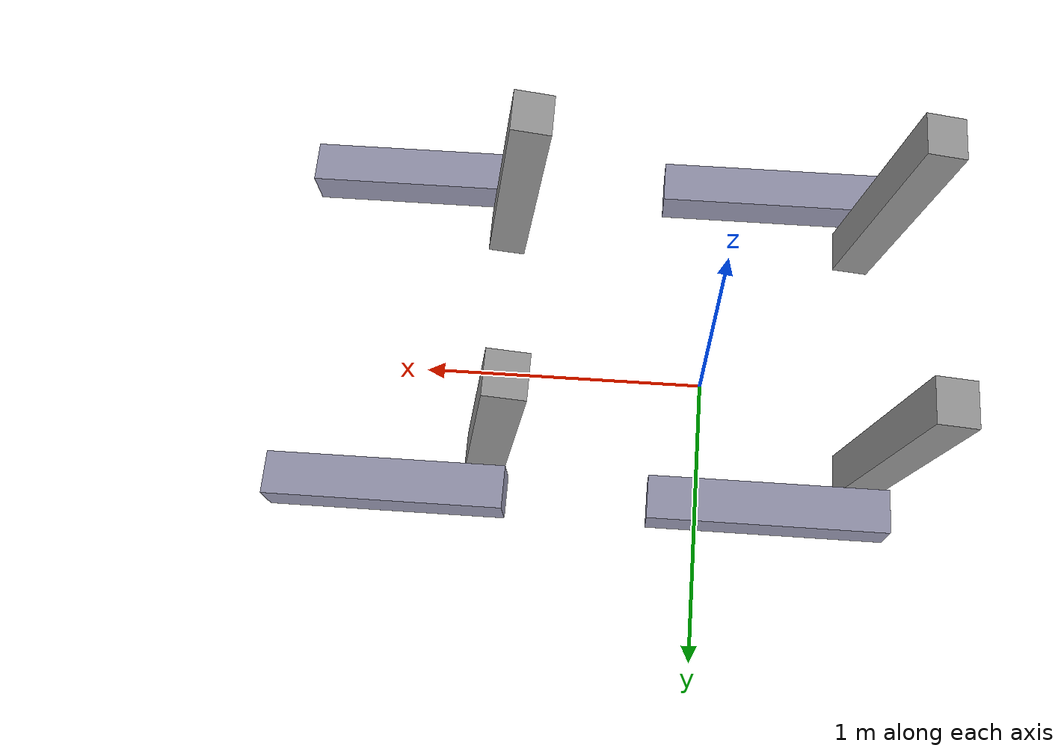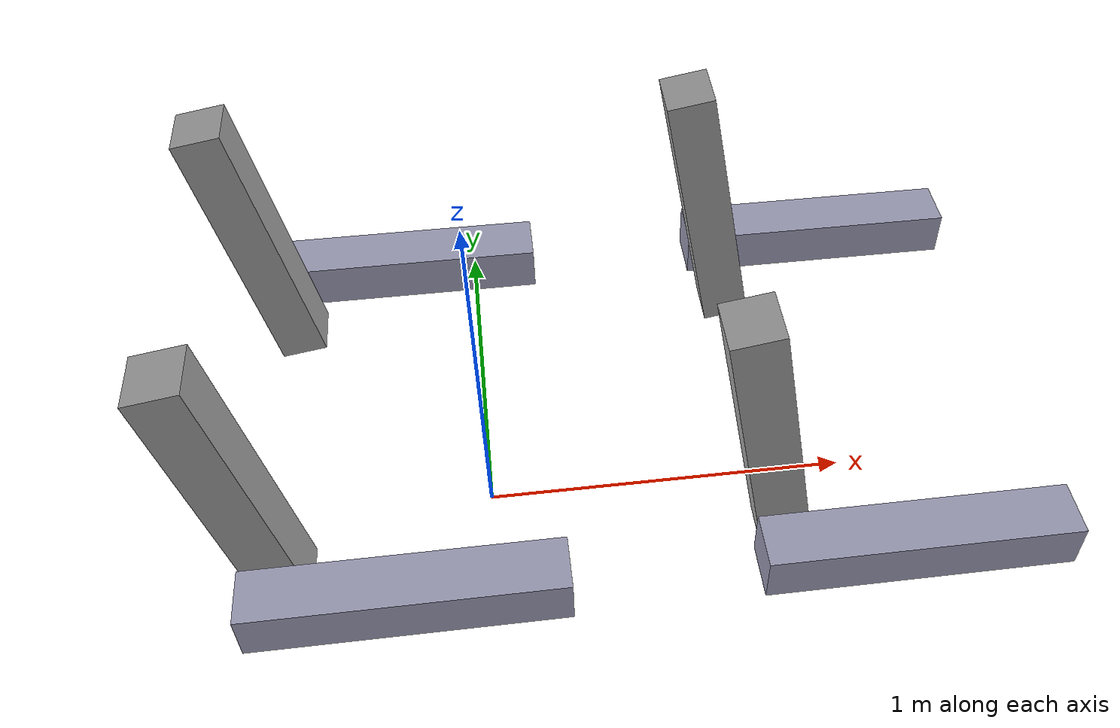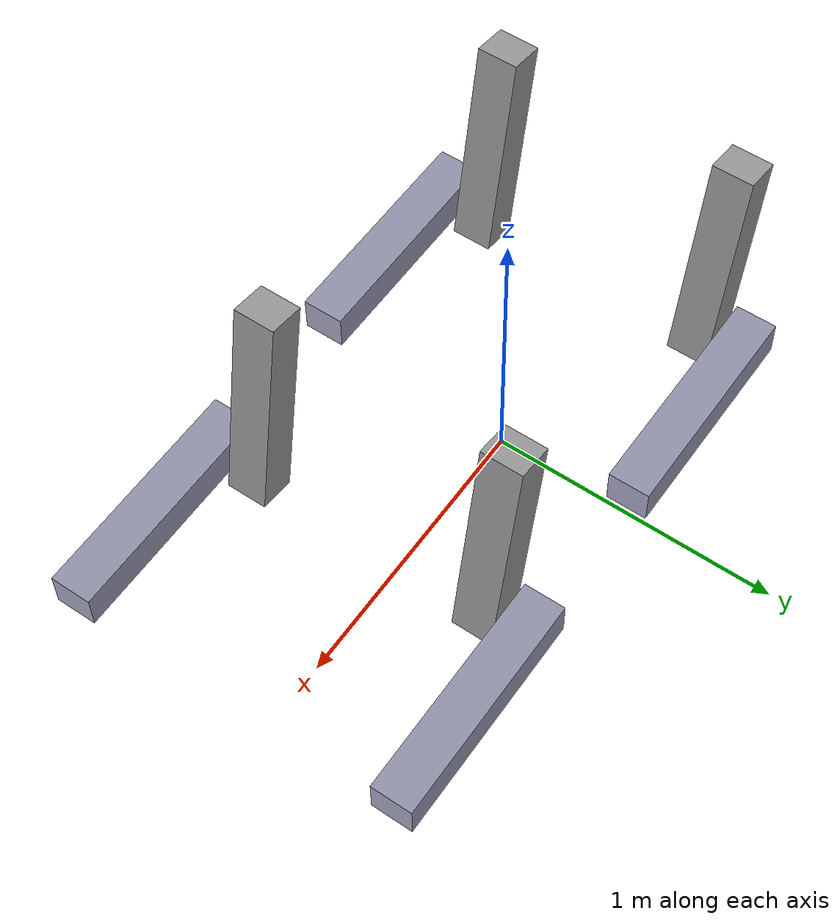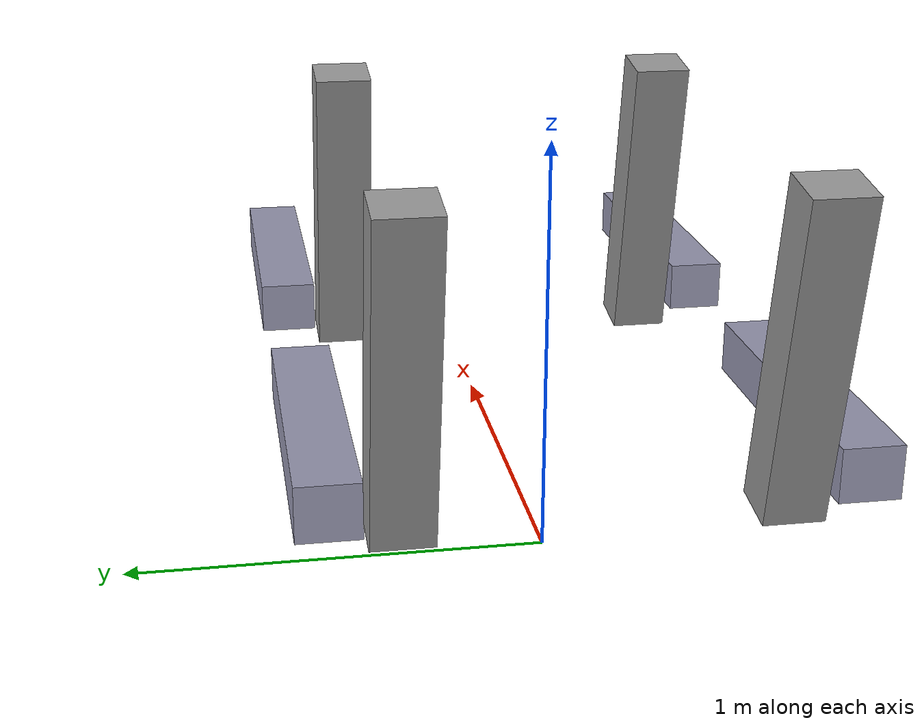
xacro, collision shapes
<?xml version="1.0" ?>

<robot name="AMBER" xmlns:xacro="http://www.ros.org/wiki/xacro">

    <!-- BODY DIMENSIONS -->
    <xacro:property name="xdb" value="1.71" />
    <xacro:property name="ydb" value="0.683" />
    <xacro:property name="zdb" value="0.41" />

    <xacro:include filename="$(find amber_sim)/urdf/single_leg.xacro"/>

    <link name="head">
    <visual>
      <origin rpy="0 0 0" xyz="0 0 1"/>
      <material name="body">
        <color rgba="0.5 0.6 0.9 1.0" />
      </material>
      <geometry>
        <mesh filename="package://amber_sim/stl/BODY.stl"/>
      </geometry>
    </visual>
    <inertial>
      <origin rpy="0 0 0" xyz="0 0 0.0615"/>
      <mass value="54.40980"/>
      <inertia ixx="3.663e+06" ixy="14390.775" ixz="1.424e+06"
               iyy="1.560e+07" iyz="8027.636" izz="1.721e+07"/>
    </inertial>
  </link>

    <xacro:amber_leg id="bottom_right" x="${xt-0.6}" y="${-ydb/2 - ydl/2}" z="${1-1.5*zt}" joint="head" dir="1"/>
    <xacro:amber_leg id="bottom_left" x="${xt-0.6}" y="${ydb/2 + ydl/2}" z="${1-1.5*zt}" joint="head" dir="-1"/>
    <xacro:amber_leg id="top_right" x="${xt+0.6}" y="${-ydb/2 - ydl/2}" z="${1-1.5*zt}" joint="head" dir="1"/>
    <xacro:amber_leg id="top_left" x="${xt+0.6}" y="${ydb/2 + ydl/2}" z="${1-1.5*zt}" joint="head" dir="-1"/>

</robot>

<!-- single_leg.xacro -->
<robot name="AMBER_Leg" xmlns:xacro="http://www.ros.org/wiki/xacro">

  <xacro:property name="upper_arm_angle" value="80" />

  <xacro:property name="TO_RAD" value="${pi/180}"/>

  <xacro:property name="ANGLEu" value="${upper_arm_angle * TO_RAD}"/>

  <!-- LOWER LEG DIMENSIONS -->
  <xacro:property name="xdu" value="1" />
  <xacro:property name="ydu" value="0.27" />
  <xacro:property name="zdu" value="0.221" />

  <!-- UPPER LEG DIMENSIONS -->
  <xacro:property name="xdl" value="0.751" />
  <xacro:property name="ydl" value="0.137" />
  <xacro:property name="zdl" value="0.123" />

  <!-- Lower Leg Shift -->
  <xacro:property name="Ju" value="${xdl * (2/5)}" /> <!-- Lower Leg Joint Shift -->
  <xacro:property name="xt" value="${Ju * cos(ANGLEu)}" /> <!-- LLJS Angle X-Shift -->
  <xacro:property name="zt" value="${Ju * sin(ANGLEu)}" /> <!-- LLJS Angle Z-Shift -->

  <xacro:macro name="amber_leg" params="id x y z joint dir">

    <!-- LOWER LEG POSITION -->
    <xacro:property name="xpl" value="${0.3}" />
    <xacro:property name="ypl" value="${y - 0.15*dir}" />
    <xacro:property name="zpl" value="${.03}" />
    <xacro:property name="xyzu" value="${xpu} ${ypu} ${zpu}" />

    <!-- UPPER LEG POSITION -->
    <xacro:property name="xpu" value="${x}" />
    <xacro:property name="ypu" value="${y}" />
    <xacro:property name="zpu" value="${z}" />
    <xacro:property name="xyzl" value="${xpl} ${ypl} ${zpl}" />

  <!-- UPPER LEG -->

    <link name="upper_leg ${id}">
      <visual>
        <origin rpy="0 ${ANGLEu} 0" xyz="${xyzu}"/>
        <material name="ul">
          <color rgba="0.6 0.6 0.6 1.0" />
        </material>
        <geometry>
          <mesh filename="package://amber_sim/stl/UPLEG.stl" />
        </geometry>
      </visual>
      <collision>
        <origin rpy="0 ${ANGLEu} 0" xyz="${xyzu}"/>
        <geometry>
          <box size="${xdl} ${ydl} ${zdl}"/>
        </geometry>
      </collision>
      <inertial>
        <origin rpy="0 ${ANGLEu} 0" xyz="${xyzu}"/>
        <mass value="1.624271"/>
        <inertia ixx="89413.852" ixy="6.821e-10" ixz="30343.48"
                 iyy="99736.006" iyz="-1.705e-09" izz="17089.95"/>
      </inertial>
    </link>

    <joint name="knee_joint ${id}" type="continuous">
      <parent link="upper_leg ${id}"/>
      <child link="lower_leg ${id}"/>
      <dynamics damping=".1" friction="0.1"/>
      <origin rpy="0 0 0" xyz="${x + xt} 0 ${z - zt}"/>
      <axis xyz="0 1 0"/>
    </joint>

  <!-- LOWER LEG -->

    <link name="lower_leg ${id}">
      <visual>
        <origin rpy="0 0 0" xyz="${xyzl}"/>
        <material name="ll">
          <color rgba="0.6 0.6 0.7 1.0" />
        </material>
        <geometry>
          <mesh filename="package://amber_sim/stl/LOWLEG.stl" scale="1 ${dir} 1"/>
        </geometry>
      </visual>
      <collision>
        <origin rpy="0 0 0" xyz="${xyzl}"/>
        <geometry>
          <box size="${xdl} ${ydl} ${zdl}"/>
        </geometry>
      </collision>
      <inertial>
        <origin rpy="0 0 0" xyz="${xyzl}"/>
        <mass value="3.442209"/>
        <inertia ixx="32621.012" ixy="6974.557" ixz="5690.275"
                 iyy="3.402e+05" iyz="-483.578" izz="3.343e+05"/>
      </inertial>
    </link>

    <joint name="hip_joint ${id}" type="fixed">
      <parent link="${joint}"/>
      <child link="upper_leg ${id}"/>
      <dynamics damping="3.0" friction="0.3"/>
      <limit effort="30.0" lower="-1.57079632679" upper="1.57079632679" velocity="5.0"/>
      <origin rpy="0 0 0" xyz="0 0 0.123"/>
      <axis xyz="0 1 0"/>
  </joint>

  </xacro:macro>

</robot>
